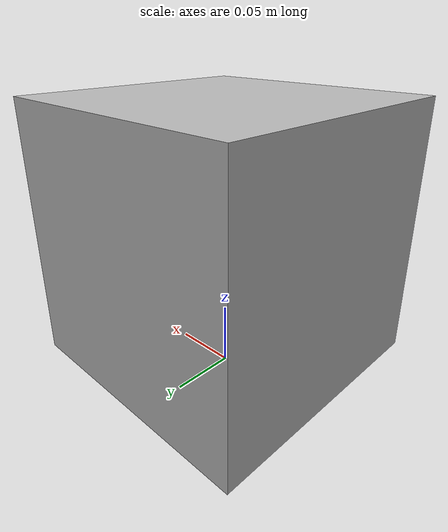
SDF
<?xml version='1.0'?>
<sdf version='1.4'>
  <model name="mark_label">
    <link name='link'>
      <pose>0 0 0.115 0 0 0</pose>
      <inertial>
        <mass>0.390</mass>
        <inertia>
          <ixx>0.00058</ixx>
          <ixy>0</ixy>
          <ixz>0</ixz>
          <iyy>0.00058</iyy>
          <iyz>0</iyz>
          <izz>0.00019</izz>
        </inertia>
      </inertial>
      <collision name='collision'>
        <geometry>
                <box>
                  <size>.2 .2 .2</size>
                </box>
        </geometry>
      </collision>

      <visual name='visual'>
        <geometry>
                <box>
                  <size>.2 .2 .2</size>
                </box>
        </geometry>

        <material>
          <script>
            <uri>model://mark_label/materials/scripts</uri>
            <uri>model://mark_label/materials/textures</uri>
            <name>Mark/Diffuse</name>
          </script>
        </material>
      </visual>
    </link>
  </model>
</sdf>
